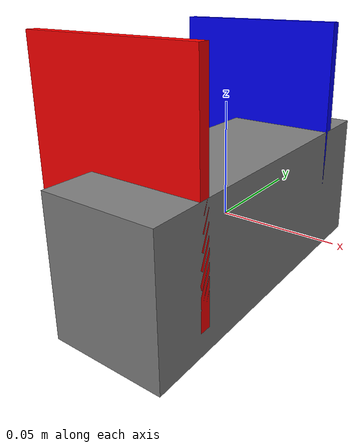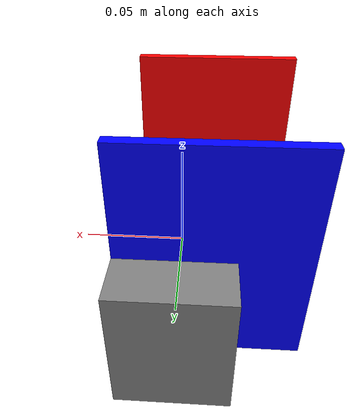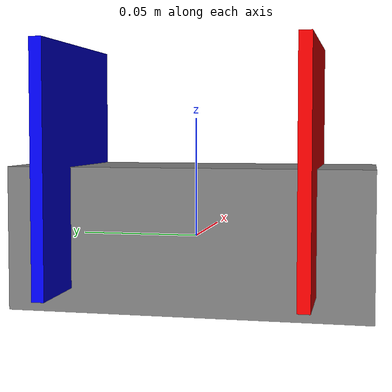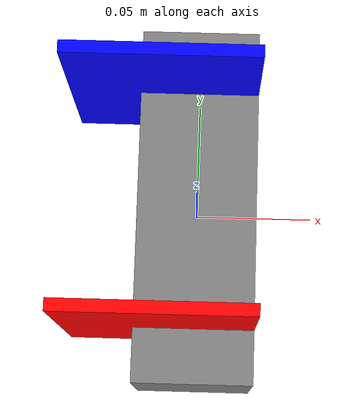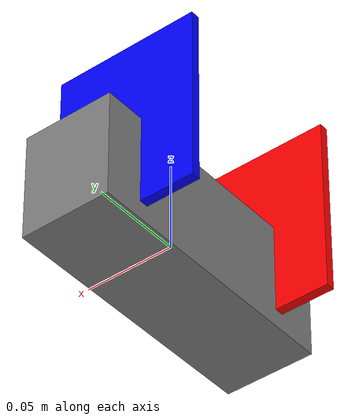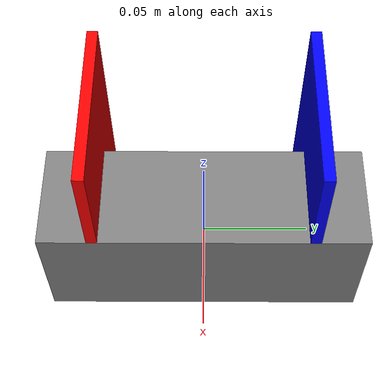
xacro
<robot name="gripper" xmlns:xacro="http://ros.org/wiki/xacro">

    <!-- Base link -->
    <link name="link_0">
        <visual>
            <geometry>
                <box size="0.05 0.15 0.06"/> <!-- Base dimensions adjusted -->
            </geometry>
            <material name="gray">
                <color rgba="0.5 0.5 0.5 1"/>
            </material>
        </visual>
        <collision>
            <geometry>
                <box size="0.05 0.15 0.06"/> <!-- Collision geometry matches visual -->
            </geometry>
        </collision>
    </link>

    <!-- Left finger -->
    <link name="jaw_lead">
        <visual>
            <geometry>
                <box size="0.08 0.005 0.1"/> <!-- Finger size -->
            </geometry>
            <origin xyz="-0.015 0.05 0.03"/>
            <material name="blue">
                <color rgba="0.0 0.0 1.0 1"/>
            </material>
        </visual>
        <collision>
            <geometry>
                <box size="0.08 0.005 0.1"/> <!-- Collision geometry matches visual -->
            </geometry>
            <origin xyz="-0.015 0.05 0.03"/>
        </collision>
    </link>

    <!-- Right finger -->
    <link name="jaw_follow">
        <visual>
            <geometry>
                <box size="0.08 0.005 0.1"/> <!-- Finger size -->
            </geometry>
            <origin xyz="-0.015 -0.05 0.03"/>
            <material name="red">
                <color rgba="1.0 0.0 0.0 1"/>
            </material>
        </visual>
        <collision>
            <geometry>
                <box size="0.08 0.005 0.1"/> <!-- Collision geometry matches visual -->
            </geometry>
            <origin xyz="-0.015 -0.05 0.03"/>
        </collision>
    </link>

    <!-- Left finger joint (prismatic for symmetric opening) -->
    <joint name="main_joint" type="prismatic">
        <parent link="link_0"/>
        <child link="jaw_lead"/>
        <origin xyz="0.0 0.0 0.0" rpy="0 0 0"/>
        <axis xyz="0 -1 0"/>
        <limit lower="0" upper="0.05" effort="1.0" velocity="0.5"/>
    </joint>

    <!-- Right finger joint (prismatic for symmetric opening) -->
    <joint name="follow_joint" type="prismatic">
        <parent link="link_0"/>
        <child link="jaw_follow"/>
        <origin xyz="0.0 0.0 0.0" rpy="0 0 0"/>
        <axis xyz="0 1 0"/>
        <limit lower="0" upper="0.05" effort="1.0" velocity="0.5"/>
        <mimic joint="main_joint" multiplyer="1.0"/>
    </joint>

</robot>
